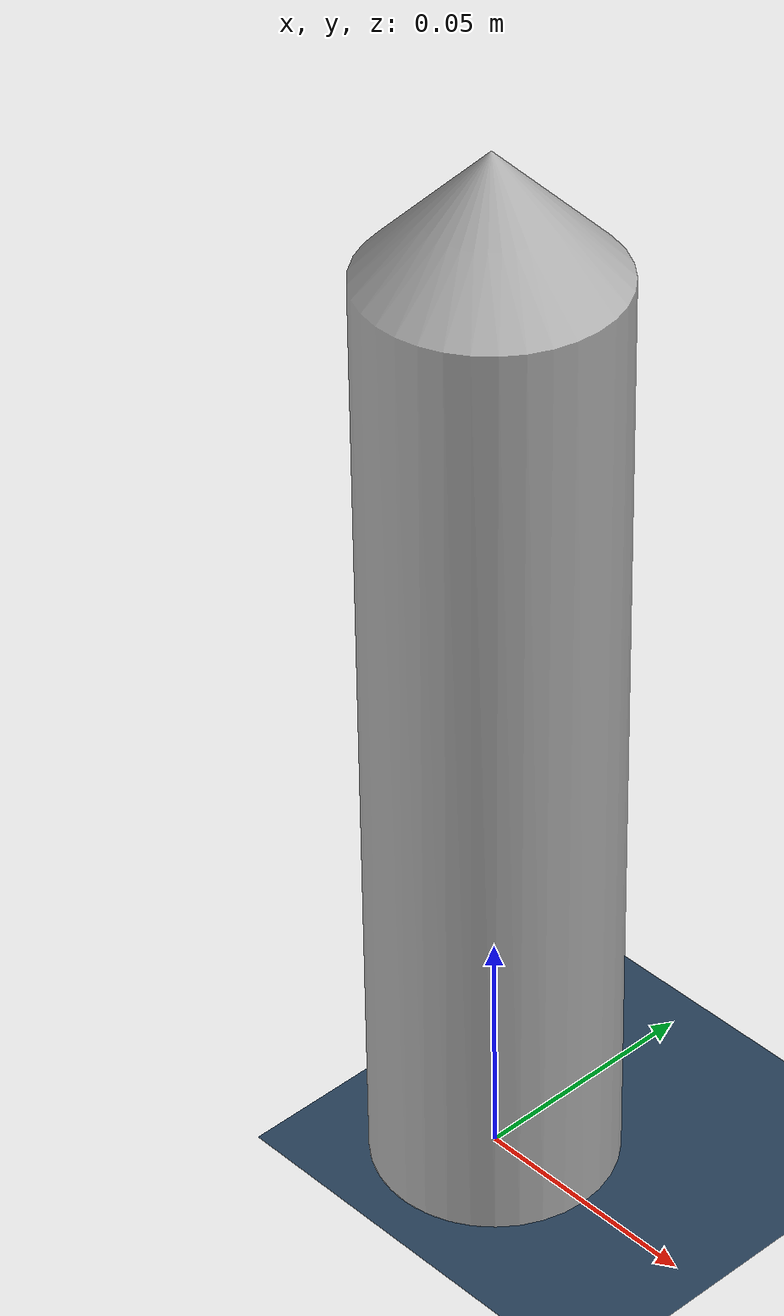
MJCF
<mujoco model="small_tool">
  <compiler angle="degree" coordinate="local"/>
  <option timestep="0.01"/>

  <visual>
    <headlight diffuse="0.6 0.6 0.6" ambient="0.1 0.1 0.1" specular="0 0 0"/>
    <rgba haze="0.15 0.25 0.35 1"/>
    <global azimuth="120" elevation="-20"/>
  </visual>

  <asset>
    <texture type="skybox" builtin="gradient" rgb1="0.3 0.5 0.7" rgb2="0 0 0" width="512" height="3072"/>
    <texture type="2d" name="groundplane" builtin="checker" mark="edge" rgb1="0.2 0.3 0.4" rgb2="0.1 0.2 0.3"
      markrgb="0.8 0.8 0.8" width="300" height="300"/>
    <material name="groundplane" texture="groundplane" texuniform="true" texrepeat="5 5" reflectance="0.2"/>

    <!-- Your screwdriver mesh for visualization -->
    <mesh name="screw_tool_mesh" file="Small_screwdriver.obj"/>
  </asset>

  <default>
    <geom condim="3" friction="1 0.5 0.01" solref="0.02 1" solimp="0.9 0.95 0.001"/>
  </default>

  <worldbody>
    <light pos="0 0 1.5" dir="0 0 -1" directional="true"/>
    <geom name="floor" size="0 0 0.05" type="plane" material="groundplane"/>
    <!-- Main body of the tool -->
    <body name="screw_tool" pos="0 0 0">

      <!-- Visual mesh: always visible -->
      <geom type="mesh" mesh="screw_tool_mesh" rgba="0.7 0.7 0.7 1" contype="0" conaffinity="0" group="0"/>

      <!-- Collision geom: only visible when group 3 is enabled -->
      <geom type="cylinder" size="0.02 0.08" pos="0 0 0.08"
            rgba="0.2 0.8 0.2 1"
            mass="0.2"
            contype="1" conaffinity="1"
            group="3"/>

      <!-- Mounting site -->
      <site name="mount_site" pos="0 0 0" size="0.005" rgba="1 0 0 1"/>

    </body>
  </worldbody>
</mujoco>
